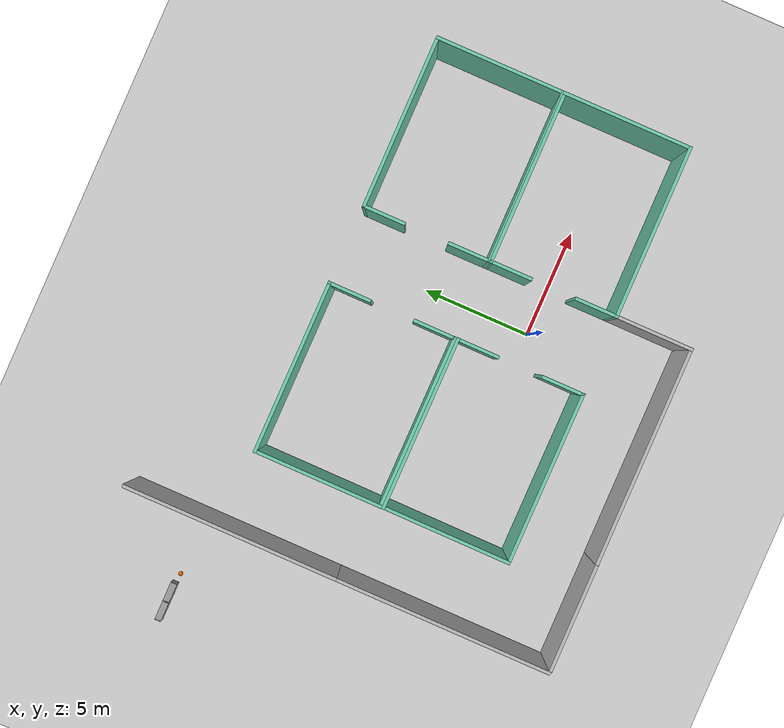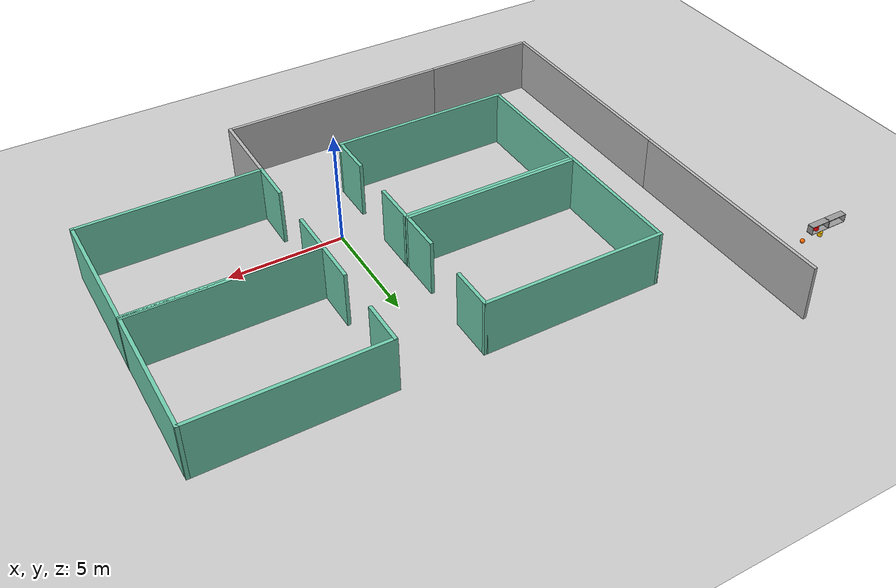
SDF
<sdf version="1.7">
 <world name="hospital_world">
  <model name="ground_plane">
   <static>1</static>
   <link name="link">
    <collision name="collision">
     <geometry><plane><normal>0 0 1</normal><size>100 100</size></plane></geometry>
     <surface>
      <contact><collide_bitmask>65535</collide_bitmask></contact>
      <friction><ode><mu>100</mu><mu2>50</mu2></ode></friction>
     </surface>
    </collision>
    <visual name="visual">
     <cast_shadows>0</cast_shadows>
     <geometry><plane><normal>0 0 1</normal><size>100 100</size></plane></geometry>
     <material>
      <script><uri>file://media/materials/scripts/gazebo.material</uri><name>Gazebo/Grey</name></script>
     </material>
    </visual>
   </link>
  </model>
  <model name="model.sdf">
   <pose>6.00187 0.00802 0 0 -0 0</pose>
   <link name="Wall_0">
    <collision name="Wall_0_Collision">
     <geometry><box><size>8 0.15 2.5</size></box></geometry>
     <pose>0 0 1.25 0 -0 0</pose>
    </collision>
    <visual name="Wall_0_Visual">
     <pose>0 0 1.25 0 -0 0</pose>
     <geometry><box><size>8 0.15 2.5</size></box></geometry>
     <material>
      <script><uri>file://media/materials/scripts/gazebo.material</uri><name>Gazebo/Grey</name></script>
      <ambient>0.435294 0.796078 0.67451 1</ambient>
     </material>
     <meta><layer>0</layer></meta>
    </visual>
    <pose>-0 -2.925 0 0 -0 0</pose>
   </link>
   <link name="Wall_2">
    <collision name="Wall_2_Collision">
     <geometry><box><size>6 0.15 2.5</size></box></geometry>
     <pose>0 0 1.25 0 -0 0</pose>
    </collision>
    <visual name="Wall_2_Visual">
     <pose>0 0 1.25 0 -0 0</pose>
     <geometry><box><size>6 0.15 2.5</size></box></geometry>
     <material>
      <script><uri>file://media/materials/scripts/gazebo.material</uri><name>Gazebo/Grey</name></script>
      <ambient>0.435294 0.796078 0.67451 1</ambient>
     </material>
     <meta><layer>0</layer></meta>
    </visual>
    <pose>3.925 0 0 0 -0 1.5708</pose>
   </link>
   <link name="Wall_5">
    <collision name="Wall_5_Collision">
     <geometry><box><size>8 0.15 2.5</size></box></geometry>
     <pose>0 0 1.25 0 -0 0</pose>
    </collision>
    <visual name="Wall_5_Visual">
     <pose>0 0 1.25 0 -0 0</pose>
     <geometry><box><size>8 0.15 2.5</size></box></geometry>
     <material>
      <script><uri>file://media/materials/scripts/gazebo.material</uri><name>Gazebo/Grey</name></script>
      <ambient>0.435294 0.796078 0.67451 1</ambient>
     </material>
     <meta><layer>0</layer></meta>
    </visual>
    <pose>-0 2.925 0 0 -0 3.14159</pose>
   </link>
   <link name="Wall_6">
    <collision name="Wall_6_Collision">
     <geometry><box><size>2 0.15 2.5</size></box></geometry>
     <pose>0 0 1.25 0 -0 0</pose>
    </collision>
    <visual name="Wall_6_Visual">
     <pose>0 0 1.25 0 -0 0</pose>
     <geometry><box><size>2 0.15 2.5</size></box></geometry>
     <material>
      <script><uri>file://media/materials/scripts/gazebo.material</uri><name>Gazebo/Grey</name></script>
      <ambient>0.435294 0.796078 0.67451 1</ambient>
     </material>
     <meta><layer>0</layer></meta>
    </visual>
    <pose>-3.925 2 0 0 -0 -1.5708</pose>
   </link>
   <link name="Wall_8">
    <collision name="Wall_8_Collision">
     <geometry><box><size>2 0.15 2.5</size></box></geometry>
     <pose>0 0 1.25 0 -0 0</pose>
    </collision>
    <visual name="Wall_8_Visual">
     <pose>0 0 1.25 0 -0 0</pose>
     <geometry><box><size>2 0.15 2.5</size></box></geometry>
     <material>
      <script><uri>file://media/materials/scripts/gazebo.material</uri><name>Gazebo/Grey</name></script>
      <ambient>0.435294 0.796078 0.67451 1</ambient>
     </material>
     <meta><layer>0</layer></meta>
    </visual>
    <pose>-3.925 -2 0 0 -0 1.5708</pose>
   </link>
   <static>1</static>
  </model>
  <model name="model.sdf_0">
   <pose>5.99464 5.93809 0 0 -0 0</pose>
   <link name="Wall_0">
    <collision name="Wall_0_Collision">
     <geometry><box><size>8 0.15 2.5</size></box></geometry>
     <pose>0 0 1.25 0 -0 0</pose>
    </collision>
    <visual name="Wall_0_Visual">
     <pose>0 0 1.25 0 -0 0</pose>
     <geometry><box><size>8 0.15 2.5</size></box></geometry>
     <material>
      <script><uri>file://media/materials/scripts/gazebo.material</uri><name>Gazebo/Grey</name></script>
      <ambient>0.435294 0.796078 0.67451 1</ambient>
     </material>
     <meta><layer>0</layer></meta>
    </visual>
    <pose>-0 -2.925 0 0 -0 0</pose>
   </link>
   <link name="Wall_2">
    <collision name="Wall_2_Collision">
     <geometry><box><size>6 0.15 2.5</size></box></geometry>
     <pose>0 0 1.25 0 -0 0</pose>
    </collision>
    <visual name="Wall_2_Visual">
     <pose>0 0 1.25 0 -0 0</pose>
     <geometry><box><size>6 0.15 2.5</size></box></geometry>
     <material>
      <script><uri>file://media/materials/scripts/gazebo.material</uri><name>Gazebo/Grey</name></script>
      <ambient>0.435294 0.796078 0.67451 1</ambient>
     </material>
     <meta><layer>0</layer></meta>
    </visual>
    <pose>3.925 0 0 0 -0 1.5708</pose>
   </link>
   <link name="Wall_5">
    <collision name="Wall_5_Collision">
     <geometry><box><size>8 0.15 2.5</size></box></geometry>
     <pose>0 0 1.25 0 -0 0</pose>
    </collision>
    <visual name="Wall_5_Visual">
     <pose>0 0 1.25 0 -0 0</pose>
     <geometry><box><size>8 0.15 2.5</size></box></geometry>
     <material>
      <script><uri>file://media/materials/scripts/gazebo.material</uri><name>Gazebo/Grey</name></script>
      <ambient>0.435294 0.796078 0.67451 1</ambient>
     </material>
     <meta><layer>0</layer></meta>
    </visual>
    <pose>-0 2.925 0 0 -0 3.14159</pose>
   </link>
   <link name="Wall_6">
    <collision name="Wall_6_Collision">
     <geometry><box><size>2 0.15 2.5</size></box></geometry>
     <pose>0 0 1.25 0 -0 0</pose>
    </collision>
    <visual name="Wall_6_Visual">
     <pose>0 0 1.25 0 -0 0</pose>
     <geometry><box><size>2 0.15 2.5</size></box></geometry>
     <material>
      <script><uri>file://media/materials/scripts/gazebo.material</uri><name>Gazebo/Grey</name></script>
      <ambient>0.435294 0.796078 0.67451 1</ambient>
     </material>
     <meta><layer>0</layer></meta>
    </visual>
    <pose>-3.925 2 0 0 -0 -1.5708</pose>
   </link>
   <link name="Wall_8">
    <collision name="Wall_8_Collision">
     <geometry><box><size>2 0.15 2.5</size></box></geometry>
     <pose>0 0 1.25 0 -0 0</pose>
    </collision>
    <visual name="Wall_8_Visual">
     <pose>0 0 1.25 0 -0 0</pose>
     <geometry><box><size>2 0.15 2.5</size></box></geometry>
     <material>
      <script><uri>file://media/materials/scripts/gazebo.material</uri><name>Gazebo/Grey</name></script>
      <ambient>0.435294 0.796078 0.67451 1</ambient>
     </material>
     <meta><layer>0</layer></meta>
    </visual>
    <pose>-3.925 -2 0 0 -0 1.5708</pose>
   </link>
   <static>1</static>
  </model>
  <model name="wall_3_5">
   <static>1</static>
   <link name="link">
    <pose>0 0 1.25 0 -0 0</pose>
    <collision name="collision">
     <geometry><box><size>3.5 0.15 2.5</size></box></geometry>
     <surface>
      <contact>
       <collide_without_contact>1</collide_without_contact>
       <collide_without_contact_bitmask>2</collide_without_contact_bitmask>
      </contact>
     </surface>
    </collision>
    <visual name="visual">
     <cast_shadows>0</cast_shadows>
     <geometry><box><size>3.5 0.15 2.5</size></box></geometry>
     <material>
      <script>
       <uri>model://cutout_wall/materials/scripts</uri>
       <uri>model://cutout_wall/materials/textures</uri>
       <name>drc_practice/cutout_wall</name>
      </script>
     </material>
    </visual>
    <sensor name="mud_contact" type="contact">
     <always_on>1</always_on>
     <update_rate>1000</update_rate>
     <contact><collision>collision</collision><topic>__default_topic__</topic></contact>
    </sensor>
   </link>
   <plugin name="gazebo_mud" filename="libMudPlugin.so">
    <contact_sensor_name>link/mud_contact</contact_sensor_name>
    <stiffness>0.0</stiffness>
    <damping>40.0</damping>
    <contact_surface_bitmask>2</contact_surface_bitmask>
    <link_name>drill::link</link_name>
   </plugin>
   <pose>2.07112 -4.73808 -0 0 -0 1.56806</pose>
  </model>
  <model name="model.sdf_2">
   <pose>-5.47704 -0.011767 0 0 -0 3.13762</pose>
   <link name="Wall_0">
    <collision name="Wall_0_Collision">
     <geometry><box><size>8 0.15 2.5</size></box></geometry>
     <pose>0 0 1.25 0 -0 0</pose>
    </collision>
    <visual name="Wall_0_Visual">
     <pose>0 0 1.25 0 -0 0</pose>
     <geometry><box><size>8 0.15 2.5</size></box></geometry>
     <material>
      <script><uri>file://media/materials/scripts/gazebo.material</uri><name>Gazebo/Grey</name></script>
      <ambient>0.435294 0.796078 0.67451 1</ambient>
     </material>
     <meta><layer>0</layer></meta>
    </visual>
    <pose>-0 -2.925 0 0 -0 0</pose>
   </link>
   <link name="Wall_2">
    <collision name="Wall_2_Collision">
     <geometry><box><size>6 0.15 2.5</size></box></geometry>
     <pose>0 0 1.25 0 -0 0</pose>
    </collision>
    <visual name="Wall_2_Visual">
     <pose>0 0 1.25 0 -0 0</pose>
     <geometry><box><size>6 0.15 2.5</size></box></geometry>
     <material>
      <script><uri>file://media/materials/scripts/gazebo.material</uri><name>Gazebo/Grey</name></script>
      <ambient>0.435294 0.796078 0.67451 1</ambient>
     </material>
     <meta><layer>0</layer></meta>
    </visual>
    <pose>3.925 0 0 0 -0 1.5708</pose>
   </link>
   <link name="Wall_5">
    <collision name="Wall_5_Collision">
     <geometry><box><size>8 0.15 2.5</size></box></geometry>
     <pose>0 0 1.25 0 -0 0</pose>
    </collision>
    <visual name="Wall_5_Visual">
     <pose>0 0 1.25 0 -0 0</pose>
     <geometry><box><size>8 0.15 2.5</size></box></geometry>
     <material>
      <script><uri>file://media/materials/scripts/gazebo.material</uri><name>Gazebo/Grey</name></script>
      <ambient>0.435294 0.796078 0.67451 1</ambient>
     </material>
     <meta><layer>0</layer></meta>
    </visual>
    <pose>-0 2.925 0 0 -0 3.14159</pose>
   </link>
   <link name="Wall_6">
    <collision name="Wall_6_Collision">
     <geometry><box><size>2 0.15 2.5</size></box></geometry>
     <pose>0 0 1.25 0 -0 0</pose>
    </collision>
    <visual name="Wall_6_Visual">
     <pose>0 0 1.25 0 -0 0</pose>
     <geometry><box><size>2 0.15 2.5</size></box></geometry>
     <material>
      <script><uri>file://media/materials/scripts/gazebo.material</uri><name>Gazebo/Grey</name></script>
      <ambient>0.435294 0.796078 0.67451 1</ambient>
     </material>
     <meta><layer>0</layer></meta>
    </visual>
    <pose>-3.925 2 0 0 -0 -1.5708</pose>
   </link>
   <link name="Wall_8">
    <collision name="Wall_8_Collision">
     <geometry><box><size>2 0.15 2.5</size></box></geometry>
     <pose>0 0 1.25 0 -0 0</pose>
    </collision>
    <visual name="Wall_8_Visual">
     <pose>0 0 1.25 0 -0 0</pose>
     <geometry><box><size>2 0.15 2.5</size></box></geometry>
     <material>
      <script><uri>file://media/materials/scripts/gazebo.material</uri><name>Gazebo/Grey</name></script>
      <ambient>0.435294 0.796078 0.67451 1</ambient>
     </material>
     <meta><layer>0</layer></meta>
    </visual>
    <pose>-3.925 -2 0 0 -0 1.5708</pose>
   </link>
   <static>1</static>
  </model>
  <model name="model.sdf_2_clone">
   <pose>-5.47026 5.98319 -0 0 -0 3.13762</pose>
   <link name="Wall_0">
    <collision name="Wall_0_Collision">
     <geometry><box><size>8 0.15 2.5</size></box></geometry>
     <pose>0 0 1.25 0 -0 0</pose>
    </collision>
    <visual name="Wall_0_Visual">
     <pose>0 0 1.25 0 -0 0</pose>
     <geometry><box><size>8 0.15 2.5</size></box></geometry>
     <material>
      <script><uri>file://media/materials/scripts/gazebo.material</uri><name>Gazebo/Grey</name></script>
      <ambient>0.435294 0.796078 0.67451 1</ambient>
     </material>
     <meta><layer>0</layer></meta>
    </visual>
    <pose>-0 -2.925 0 0 -0 0</pose>
   </link>
   <link name="Wall_2">
    <collision name="Wall_2_Collision">
     <geometry><box><size>6 0.15 2.5</size></box></geometry>
     <pose>0 0 1.25 0 -0 0</pose>
    </collision>
    <visual name="Wall_2_Visual">
     <pose>0 0 1.25 0 -0 0</pose>
     <geometry><box><size>6 0.15 2.5</size></box></geometry>
     <material>
      <script><uri>file://media/materials/scripts/gazebo.material</uri><name>Gazebo/Grey</name></script>
      <ambient>0.435294 0.796078 0.67451 1</ambient>
     </material>
     <meta><layer>0</layer></meta>
    </visual>
    <pose>3.925 0 0 0 -0 1.5708</pose>
   </link>
   <link name="Wall_5">
    <collision name="Wall_5_Collision">
     <geometry><box><size>8 0.15 2.5</size></box></geometry>
     <pose>0 0 1.25 0 -0 0</pose>
    </collision>
    <visual name="Wall_5_Visual">
     <pose>0 0 1.25 0 -0 0</pose>
     <geometry><box><size>8 0.15 2.5</size></box></geometry>
     <material>
      <script><uri>file://media/materials/scripts/gazebo.material</uri><name>Gazebo/Grey</name></script>
      <ambient>0.435294 0.796078 0.67451 1</ambient>
     </material>
     <meta><layer>0</layer></meta>
    </visual>
    <pose>-0 2.925 0 0 -0 3.14159</pose>
   </link>
   <link name="Wall_6">
    <collision name="Wall_6_Collision">
     <geometry><box><size>2 0.15 2.5</size></box></geometry>
     <pose>0 0 1.25 0 -0 0</pose>
    </collision>
    <visual name="Wall_6_Visual">
     <pose>0 0 1.25 0 -0 0</pose>
     <geometry><box><size>2 0.15 2.5</size></box></geometry>
     <material>
      <script><uri>file://media/materials/scripts/gazebo.material</uri><name>Gazebo/Grey</name></script>
      <ambient>0.435294 0.796078 0.67451 1</ambient>
     </material>
     <meta><layer>0</layer></meta>
    </visual>
    <pose>-3.925 2 0 0 -0 -1.5708</pose>
   </link>
   <link name="Wall_8">
    <collision name="Wall_8_Collision">
     <geometry><box><size>2 0.15 2.5</size></box></geometry>
     <pose>0 0 1.25 0 -0 0</pose>
    </collision>
    <visual name="Wall_8_Visual">
     <pose>0 0 1.25 0 -0 0</pose>
     <geometry><box><size>2 0.15 2.5</size></box></geometry>
     <material>
      <script><uri>file://media/materials/scripts/gazebo.material</uri><name>Gazebo/Grey</name></script>
      <ambient>0.435294 0.796078 0.67451 1</ambient>
     </material>
     <meta><layer>0</layer></meta>
    </visual>
    <pose>-3.925 -2 0 0 -0 1.5708</pose>
   </link>
   <static>1</static>
  </model>
  <model name="wall_10">
   <static>1</static>
   <link name="link">
    <pose>0 0 1.25 0 -0 0</pose>
    <collision name="collision">
     <geometry><box><size>10 0.15 2.5</size></box></geometry>
     <surface>
      <contact>
       <collide_without_contact>1</collide_without_contact>
       <collide_without_contact_bitmask>2</collide_without_contact_bitmask>
      </contact>
     </surface>
    </collision>
    <visual name="visual">
     <cast_shadows>0</cast_shadows>
     <geometry><box><size>10 0.15 2.5</size></box></geometry>
     <material>
      <script>
       <uri>model://cutout_wall/materials/scripts</uri>
       <uri>model://cutout_wall/materials/textures</uri>
       <name>drc_practice/cutout_wall</name>
      </script>
     </material>
    </visual>
    <sensor name="mud_contact" type="contact">
     <always_on>1</always_on>
     <update_rate>1000</update_rate>
     <contact><collision>collision</collision><topic>__default_topic__</topic></contact>
    </sensor>
   </link>
   <plugin name="gazebo_mud" filename="libMudPlugin.so">
    <contact_sensor_name>link/mud_contact</contact_sensor_name>
    <stiffness>0.0</stiffness>
    <damping>40.0</damping>
    <contact_surface_bitmask>2</contact_surface_bitmask>
    <link_name>drill::link</link_name>
   </plugin>
   <pose>-3.00199 -6.40567 0 0 -0 0</pose>
  </model>
  <model name="wall_10_0">
   <static>1</static>
   <link name="link">
    <pose>0 0 1.25 0 -0 0</pose>
    <collision name="collision">
     <geometry><box><size>10 0.15 2.5</size></box></geometry>
     <surface>
      <contact>
       <collide_without_contact>1</collide_without_contact>
       <collide_without_contact_bitmask>2</collide_without_contact_bitmask>
      </contact>
     </surface>
    </collision>
    <visual name="visual">
     <cast_shadows>0</cast_shadows>
     <geometry><box><size>10 0.15 2.5</size></box></geometry>
     <material>
      <script>
       <uri>model://cutout_wall/materials/scripts</uri>
       <uri>model://cutout_wall/materials/textures</uri>
       <name>drc_practice/cutout_wall</name>
      </script>
     </material>
    </visual>
    <sensor name="mud_contact" type="contact">
     <always_on>1</always_on>
     <update_rate>1000</update_rate>
     <contact><collision>collision</collision><topic>__default_topic__</topic></contact>
    </sensor>
   </link>
   <plugin name="gazebo_mud" filename="libMudPlugin.so">
    <contact_sensor_name>link/mud_contact</contact_sensor_name>
    <stiffness>0.0</stiffness>
    <damping>40.0</damping>
    <contact_surface_bitmask>2</contact_surface_bitmask>
    <link_name>drill::link</link_name>
   </plugin>
   <pose>-13.0332 -1.45494 0 0 0 -1.57214</pose>
  </model>
  <model name="wall_5">
   <static>1</static>
   <link name="link">
    <pose>0 0 1.25 0 -0 0</pose>
    <collision name="collision">
     <geometry><box><size>5 0.15 2.5</size></box></geometry>
     <surface>
      <contact>
       <collide_without_contact>1</collide_without_contact>
       <collide_without_contact_bitmask>2</collide_without_contact_bitmask>
      </contact>
     </surface>
    </collision>
    <visual name="visual">
     <cast_shadows>0</cast_shadows>
     <geometry><box><size>5 0.15 2.5</size></box></geometry>
     <material>
      <script>
       <uri>model://cutout_wall/materials/scripts</uri>
       <uri>model://cutout_wall/materials/textures</uri>
       <name>drc_practice/cutout_wall</name>
      </script>
     </material>
    </visual>
    <sensor name="mud_contact" type="contact">
     <always_on>1</always_on>
     <update_rate>1000</update_rate>
     <contact><collision>collision</collision><topic>__default_topic__</topic></contact>
    </sensor>
   </link>
   <plugin name="gazebo_mud" filename="libMudPlugin.so">
    <contact_sensor_name>link/mud_contact</contact_sensor_name>
    <stiffness>0.0</stiffness>
    <damping>40.0</damping>
    <contact_surface_bitmask>2</contact_surface_bitmask>
    <link_name>drill::link</link_name>
   </plugin>
   <pose>-10.4583 -6.41458 0 0 -0 0</pose>
  </model>
  <model name="wall_10_0_clone">
   <static>1</static>
   <link name="link">
    <pose>0 0 1.25 0 -0 0</pose>
    <collision name="collision">
     <geometry><box><size>10 0.15 2.5</size></box></geometry>
     <surface>
      <contact>
       <collide_without_contact>1</collide_without_contact>
       <collide_without_contact_bitmask>2</collide_without_contact_bitmask>
      </contact>
     </surface>
    </collision>
    <visual name="visual">
     <cast_shadows>0</cast_shadows>
     <geometry><box><size>10 0.15 2.5</size></box></geometry>
     <material>
      <script>
       <uri>model://cutout_wall/materials/scripts</uri>
       <uri>model://cutout_wall/materials/textures</uri>
       <name>drc_practice/cutout_wall</name>
      </script>
     </material>
    </visual>
    <sensor name="mud_contact" type="contact">
     <always_on>1</always_on>
     <update_rate>1000</update_rate>
     <contact><collision>collision</collision><topic>__default_topic__</topic></contact>
    </sensor>
   </link>
   <plugin name="gazebo_mud" filename="libMudPlugin.so">
    <contact_sensor_name>link/mud_contact</contact_sensor_name>
    <stiffness>0.0</stiffness>
    <damping>40.0</damping>
    <contact_surface_bitmask>2</contact_surface_bitmask>
    <link_name>drill::link</link_name>
   </plugin>
   <pose>-13.02 8.53758 0 0 0 -1.57214</pose>
  </model>
  <model name="Wall_Cabinet_36x15W_clone_0">
   <link name="Wall_0">
    <pose>0 0 0.01 0 -0 0</pose>
    <inertial>
     <mass>1.9796</mass>
     <inertia><ixx>0.0145</ixx><iyy>0.1511</iyy><izz>0.1367</izz><ixy>0</ixy><ixz>0</ixz><iyz>0</iyz></inertia>
    </inertial>
    <collision name="Wall_0_Collision"><geometry><box><size>0.91 0.296 0.02</size></box></geometry></collision>
    <visual name="Wall_0_Visual">
     <geometry><box><size>0.91 0.296 0.02</size></box></geometry>
     <material>
      <script><uri>file://media/materials/scripts/gazebo.material</uri><name>Gazebo/Grey</name></script>
      <ambient>1 1 1 1</ambient>
     </material>
    </visual>
   </link>
   <joint name="0_2" type="fixed">
    <pose>-0.455 0 0 0 -0 0</pose>
    <parent>Wall_2</parent>
    <child>Wall_0</child>
    <axis><xyz>0 0 1</xyz><limit><lower>-1e+16</lower><upper>1e+16</upper></limit></axis>
   </joint>
   <joint name="0_4" type="fixed">
    <pose>0.455 0 0 0 -0 0</pose>
    <parent>Wall_4</parent>
    <child>Wall_0</child>
    <axis><xyz>0 0 1</xyz><limit><lower>-1e+16</lower><upper>1e+16</upper></limit></axis>
   </joint>
   <joint name="0_8" type="fixed">
    <pose>0 -0.148 0 0 -0 0</pose>
    <parent>Wall_8</parent>
    <child>Wall_0</child>
    <axis><xyz>0 0 1</xyz><limit><lower>-1e+16</lower><upper>1e+16</upper></limit></axis>
   </joint>
   <link name="Wall_2">
    <pose>-0.445 0 0.192 0 -0 0</pose>
    <inertial>
     <mass>0.8353</mass>
     <inertia><ixx>0.0061</ixx><iyy>0.0164</iyy><izz>0.0103</izz><ixy>0</ixy><ixz>0</ixz><iyz>0</iyz></inertia>
    </inertial>
    <collision name="Wall_2_Collision"><geometry><box><size>0.02 0.296 0.384</size></box></geometry></collision>
    <visual name="Wall_2_Visual">
     <geometry><box><size>0.02 0.296 0.384</size></box></geometry>
     <material>
      <script><uri>file://media/materials/scripts/gazebo.material</uri><name>Gazebo/Grey</name></script>
      <ambient>1 1 1 1</ambient>
     </material>
    </visual>
   </link>
   <link name="Wall_4">
    <pose>0.445 0 0.192 0 -0 0</pose>
    <inertial>
     <mass>0.8353</mass>
     <inertia><ixx>0.0061</ixx><iyy>0.0164</iyy><izz>0.0103</izz><ixy>0</ixy><ixz>0</ixz><iyz>0</iyz></inertia>
    </inertial>
    <collision name="Wall_4_Collision"><geometry><box><size>0.02 0.296 0.384</size></box></geometry></collision>
    <visual name="Wall_4_Visual">
     <geometry><box><size>0.02 0.296 0.384</size></box></geometry>
     <material>
      <script><uri>file://media/materials/scripts/gazebo.material</uri><name>Gazebo/Grey</name></script>
      <ambient>1 1 1 1</ambient>
     </material>
    </visual>
   </link>
   <link name="Wall_6">
    <pose>0 0 0.374 0 -0 0</pose>
    <inertial>
     <mass>1.9796</mass>
     <inertia><ixx>0.0145</ixx><iyy>0.1511</iyy><izz>0.1367</izz><ixy>0</ixy><ixz>0</ixz><iyz>0</iyz></inertia>
    </inertial>
    <collision name="Wall_6_Collision"><geometry><box><size>0.91 0.296 0.02</size></box></geometry></collision>
    <visual name="Wall_6_Visual">
     <geometry><box><size>0.91 0.296 0.02</size></box></geometry>
     <material>
      <script><uri>file://media/materials/scripts/gazebo.material</uri><name>Gazebo/Grey</name></script>
      <ambient>1 1 1 1</ambient>
     </material>
    </visual>
   </link>
   <joint name="6_2" type="fixed">
    <pose>-0.455 0 0 0 -0 0</pose>
    <parent>Wall_2</parent>
    <child>Wall_6</child>
    <axis><xyz>0 0 1</xyz><limit><lower>-1e+16</lower><upper>1e+16</upper></limit></axis>
   </joint>
   <joint name="6_4" type="fixed">
    <pose>0.455 0 0 0 -0 0</pose>
    <parent>Wall_4</parent>
    <child>Wall_6</child>
    <axis><xyz>0 0 1</xyz><limit><lower>-1e+16</lower><upper>1e+16</upper></limit></axis>
   </joint>
   <joint name="6_8" type="fixed">
    <pose>0 -0.148 0 0 -0 0</pose>
    <parent>Wall_8</parent>
    <child>Wall_6</child>
    <axis><xyz>0 0 1</xyz><limit><lower>-1e+16</lower><upper>1e+16</upper></limit></axis>
   </joint>
   <link name="Wall_8">
    <pose>0 -0.138 0.19 0 -0 0</pose>
    <inertial>
     <mass>2.5302</mass>
     <inertia><ixx>0.0305</ixx><iyy>0.1732</iyy><izz>0.2035</izz><ixy>0</ixy><ixz>0</ixz><iyz>0</iyz></inertia>
    </inertial>
    <collision name="Wall_8_Collision"><geometry><box><size>0.906 0.02 0.38</size></box></geometry></collision>
    <visual name="Wall_8_Visual">
     <geometry><box><size>0.906 0.02 0.38</size></box></geometry>
     <material>
      <script><uri>file://media/materials/scripts/gazebo.material</uri><name>Gazebo/Grey</name></script>
      <ambient>1 1 1 1</ambient>
     </material>
    </visual>
   </link>
   <joint name="8_2" type="fixed">
    <pose>-0.453 0 0 0 -0 0</pose>
    <parent>Wall_2</parent>
    <child>Wall_8</child>
    <axis><xyz>0 1 0</xyz><limit><lower>-1e+16</lower><upper>1e+16</upper></limit></axis>
   </joint>
   <joint name="8_4" type="fixed">
    <pose>0.453 0 0 0 -0 0</pose>
    <parent>Wall_4</parent>
    <child>Wall_8</child>
    <axis><xyz>0 1 0</xyz><limit><lower>-1e+16</lower><upper>1e+16</upper></limit></axis>
   </joint>
   <static>1</static>
   <pose>-17.8759 10.0659 0.383805 0 -0 0</pose>
  </model>
  <model name="Wall_Cabinet_36x15W_clone_0_clone">
   <link name="Wall_0">
    <pose>0 0 0.01 0 -0 0</pose>
    <inertial>
     <mass>1.9796</mass>
     <inertia><ixx>0.0145</ixx><iyy>0.1511</iyy><izz>0.1367</izz><ixy>0</ixy><ixz>0</ixz><iyz>0</iyz></inertia>
    </inertial>
    <collision name="Wall_0_Collision"><geometry><box><size>0.91 0.296 0.02</size></box></geometry></collision>
    <visual name="Wall_0_Visual">
     <geometry><box><size>0.91 0.296 0.02</size></box></geometry>
     <material>
      <script><uri>file://media/materials/scripts/gazebo.material</uri><name>Gazebo/Grey</name></script>
      <ambient>1 1 1 1</ambient>
     </material>
    </visual>
   </link>
   <joint name="0_2" type="fixed">
    <pose>-0.455 0 0 0 -0 0</pose>
    <parent>Wall_2</parent>
    <child>Wall_0</child>
    <axis><xyz>0 0 1</xyz><limit><lower>-1e+16</lower><upper>1e+16</upper></limit></axis>
   </joint>
   <joint name="0_4" type="fixed">
    <pose>0.455 0 0 0 -0 0</pose>
    <parent>Wall_4</parent>
    <child>Wall_0</child>
    <axis><xyz>0 0 1</xyz><limit><lower>-1e+16</lower><upper>1e+16</upper></limit></axis>
   </joint>
   <joint name="0_8" type="fixed">
    <pose>0 -0.148 0 0 -0 0</pose>
    <parent>Wall_8</parent>
    <child>Wall_0</child>
    <axis><xyz>0 0 1</xyz><limit><lower>-1e+16</lower><upper>1e+16</upper></limit></axis>
   </joint>
   <link name="Wall_2">
    <pose>-0.445 0 0.192 0 -0 0</pose>
    <inertial>
     <mass>0.8353</mass>
     <inertia><ixx>0.0061</ixx><iyy>0.0164</iyy><izz>0.0103</izz><ixy>0</ixy><ixz>0</ixz><iyz>0</iyz></inertia>
    </inertial>
    <collision name="Wall_2_Collision"><geometry><box><size>0.02 0.296 0.384</size></box></geometry></collision>
    <visual name="Wall_2_Visual">
     <geometry><box><size>0.02 0.296 0.384</size></box></geometry>
     <material>
      <script><uri>file://media/materials/scripts/gazebo.material</uri><name>Gazebo/Grey</name></script>
      <ambient>1 1 1 1</ambient>
     </material>
    </visual>
   </link>
   <link name="Wall_4">
    <pose>0.445 0 0.192 0 -0 0</pose>
    <inertial>
     <mass>0.8353</mass>
     <inertia><ixx>0.0061</ixx><iyy>0.0164</iyy><izz>0.0103</izz><ixy>0</ixy><ixz>0</ixz><iyz>0</iyz></inertia>
    </inertial>
    <collision name="Wall_4_Collision"><geometry><box><size>0.02 0.296 0.384</size></box></geometry></collision>
    <visual name="Wall_4_Visual">
     <geometry><box><size>0.02 0.296 0.384</size></box></geometry>
     <material>
      <script><uri>file://media/materials/scripts/gazebo.material</uri><name>Gazebo/Grey</name></script>
      <ambient>1 1 1 1</ambient>
     </material>
    </visual>
   </link>
   <link name="Wall_6">
    <pose>0 0 0.374 0 -0 0</pose>
    <inertial>
     <mass>1.9796</mass>
     <inertia><ixx>0.0145</ixx><iyy>0.1511</iyy><izz>0.1367</izz><ixy>0</ixy><ixz>0</ixz><iyz>0</iyz></inertia>
    </inertial>
    <collision name="Wall_6_Collision"><geometry><box><size>0.91 0.296 0.02</size></box></geometry></collision>
    <visual name="Wall_6_Visual">
     <geometry><box><size>0.91 0.296 0.02</size></box></geometry>
     <material>
      <script><uri>file://media/materials/scripts/gazebo.material</uri><name>Gazebo/Grey</name></script>
      <ambient>1 1 1 1</ambient>
     </material>
    </visual>
   </link>
   <joint name="6_2" type="fixed">
    <pose>-0.455 0 0 0 -0 0</pose>
    <parent>Wall_2</parent>
    <child>Wall_6</child>
    <axis><xyz>0 0 1</xyz><limit><lower>-1e+16</lower><upper>1e+16</upper></limit></axis>
   </joint>
   <joint name="6_4" type="fixed">
    <pose>0.455 0 0 0 -0 0</pose>
    <parent>Wall_4</parent>
    <child>Wall_6</child>
    <axis><xyz>0 0 1</xyz><limit><lower>-1e+16</lower><upper>1e+16</upper></limit></axis>
   </joint>
   <joint name="6_8" type="fixed">
    <pose>0 -0.148 0 0 -0 0</pose>
    <parent>Wall_8</parent>
    <child>Wall_6</child>
    <axis><xyz>0 0 1</xyz><limit><lower>-1e+16</lower><upper>1e+16</upper></limit></axis>
   </joint>
   <link name="Wall_8">
    <pose>0 -0.138 0.19 0 -0 0</pose>
    <inertial>
     <mass>2.5302</mass>
     <inertia><ixx>0.0305</ixx><iyy>0.1732</iyy><izz>0.2035</izz><ixy>0</ixy><ixz>0</ixz><iyz>0</iyz></inertia>
    </inertial>
    <collision name="Wall_8_Collision"><geometry><box><size>0.906 0.02 0.38</size></box></geometry></collision>
    <visual name="Wall_8_Visual">
     <geometry><box><size>0.906 0.02 0.38</size></box></geometry>
     <material>
      <script><uri>file://media/materials/scripts/gazebo.material</uri><name>Gazebo/Grey</name></script>
      <ambient>1 1 1 1</ambient>
     </material>
    </visual>
   </link>
   <joint name="8_2" type="fixed">
    <pose>-0.453 0 0 0 -0 0</pose>
    <parent>Wall_2</parent>
    <child>Wall_8</child>
    <axis><xyz>0 1 0</xyz><limit><lower>-1e+16</lower><upper>1e+16</upper></limit></axis>
   </joint>
   <joint name="8_4" type="fixed">
    <pose>0.453 0 0 0 -0 0</pose>
    <parent>Wall_4</parent>
    <child>Wall_8</child>
    <axis><xyz>0 1 0</xyz><limit><lower>-1e+16</lower><upper>1e+16</upper></limit></axis>
   </joint>
   <static>1</static>
   <pose>-16.9591 10.0652 0.383805 0 -0 0</pose>
  </model>
  <model name="sphere_or">
   <link name="link_1">
    <pose>0 0 0.1 0 -0 0</pose>
    <inertial>
     <mass>1</mass>
     <inertia><ixx>0.1</ixx><ixy>0</ixy><ixz>0</ixz><iyy>0.1</iyy><iyz>0</iyz><izz>0.1</izz></inertia>
    </inertial>
    <visual name="visual">
     <geometry><sphere><radius>0.1</radius></sphere></geometry>
     <material>
      <lighting>1</lighting>
      <script><uri>file://media/materials/scripts/gazebo.material</uri><name>Gazebo/Grey</name></script>
      <ambient>1 0.416 0 1</ambient>
      <diffuse>1 0.416 0 1</diffuse>
      <specular>0 0 0 1</specular>
      <emissive>0 0 0 1</emissive>
      <shader type="vertex"><normal_map>__default__</normal_map></shader>
     </material>
    </visual>
    <collision name="collision">
     <geometry><sphere><radius>0.1</radius></sphere></geometry>
     <surface>
      <friction>
       <ode><mu>1</mu><mu2>1</mu2><fdir1>0 0 0</fdir1><slip1>0</slip1><slip2>0</slip2></ode>
       <torsional>
        <coefficient>1</coefficient>
        <patch_radius>0</patch_radius>
        <surface_radius>0</surface_radius>
        <use_patch_radius>1</use_patch_radius>
        <ode><slip>0</slip></ode>
       </torsional>
      </friction>
      <bounce><restitution_coefficient>0</restitution_coefficient><threshold>1e+06</threshold></bounce>
      <contact>
       <collide_without_contact>0</collide_without_contact>
       <collide_without_contact_bitmask>1</collide_without_contact_bitmask>
       <collide_bitmask>1</collide_bitmask>
       <ode>
        <soft_cfm>0</soft_cfm>
        <soft_erp>0.2</soft_erp>
        <kp>1e+13</kp>
        <kd>1</kd>
        <max_vel>0.01</max_vel>
        <min_depth>0</min_depth>
       </ode>
       <bullet>
        <split_impulse>1</split_impulse>
        <split_impulse_penetration_threshold>-0.01</split_impulse_penetration_threshold>
        <soft_cfm>0</soft_cfm>
        <soft_erp>0.2</soft_erp>
        <kp>1e+13</kp>
        <kd>1</kd>
       </bullet>
      </contact>
     </surface>
    </collision>
   </link>
   <static>1</static>
   <pose>-16.2133 10.0441 0 0 -0 0</pose>
  </model>
  <model name="cylinder_yo">
   <link name="link_0">
    <pose>0 0 0.1 0 -0 0</pose>
    <inertial>
     <mass>1</mass>
     <inertia><ixx>0.145833</ixx><ixy>0</ixy><ixz>0</ixz><iyy>0.145833</iyy><iyz>0</iyz><izz>0.125</izz></inertia>
    </inertial>
    <visual name="visual">
     <geometry><cylinder><radius>0.1</radius><length>0.2</length></cylinder></geometry>
     <material>
      <lighting>1</lighting>
      <script><uri>file://media/materials/scripts/gazebo.material</uri><name>Gazebo/Grey</name></script>
      <ambient>1 0.749 0 1</ambient>
      <diffuse>1 0.749 0 1</diffuse>
      <specular>0 0 0 1</specular>
      <emissive>0 0 0 1</emissive>
      <shader type="vertex"><normal_map>__default__</normal_map></shader>
     </material>
    </visual>
    <collision name="collision">
     <geometry><cylinder><radius>0.1</radius><length>0.2</length></cylinder></geometry>
     <surface>
      <friction>
       <ode><mu>1</mu><mu2>1</mu2><fdir1>0 0 0</fdir1><slip1>0</slip1><slip2>0</slip2></ode>
       <torsional>
        <coefficient>1</coefficient>
        <patch_radius>0</patch_radius>
        <surface_radius>0</surface_radius>
        <use_patch_radius>1</use_patch_radius>
        <ode><slip>0</slip></ode>
       </torsional>
      </friction>
      <bounce><restitution_coefficient>0</restitution_coefficient><threshold>1e+06</threshold></bounce>
      <contact>
       <collide_without_contact>0</collide_without_contact>
       <collide_without_contact_bitmask>1</collide_without_contact_bitmask>
       <collide_bitmask>1</collide_bitmask>
       <ode>
        <soft_cfm>0</soft_cfm>
        <soft_erp>0.2</soft_erp>
        <kp>1e+13</kp>
        <kd>1</kd>
        <max_vel>0.01</max_vel>
        <min_depth>0</min_depth>
       </ode>
       <bullet>
        <split_impulse>1</split_impulse>
        <split_impulse_penetration_threshold>-0.01</split_impulse_penetration_threshold>
        <soft_cfm>0</soft_cfm>
        <soft_erp>0.2</soft_erp>
        <kp>1e+13</kp>
        <kd>1</kd>
       </bullet>
      </contact>
     </surface>
    </collision>
   </link>
   <static>1</static>
   <pose>-17.1827 10.0564 0 0 -0 0</pose>
  </model>
  <model name="cylinder_r">
   <link name="link_0">
    <pose>0 0 0.1 0 -0 0</pose>
    <inertial>
     <mass>1</mass>
     <inertia><ixx>0.145833</ixx><ixy>0</ixy><ixz>0</ixz><iyy>0.145833</iyy><iyz>0</iyz><izz>0.125</izz></inertia>
    </inertial>
    <visual name="visual">
     <geometry><cylinder><radius>0.1</radius><length>0.2</length></cylinder></geometry>
     <material>
      <lighting>1</lighting>
      <script><uri>file://media/materials/scripts/gazebo.material</uri><name>Gazebo/Grey</name></script>
      <ambient>1 0 0 1</ambient>
      <diffuse>1 0 0 1</diffuse>
      <specular>0 0 0 1</specular>
      <emissive>0 0 0 1</emissive>
      <shader type="vertex"><normal_map>__default__</normal_map></shader>
     </material>
    </visual>
    <collision name="collision">
     <geometry><cylinder><radius>0.1</radius><length>0.2</length></cylinder></geometry>
     <surface>
      <friction>
       <ode><mu>1</mu><mu2>1</mu2><fdir1>0 0 0</fdir1><slip1>0</slip1><slip2>0</slip2></ode>
       <torsional>
        <coefficient>1</coefficient>
        <patch_radius>0</patch_radius>
        <surface_radius>0</surface_radius>
        <use_patch_radius>1</use_patch_radius>
        <ode><slip>0</slip></ode>
       </torsional>
      </friction>
      <bounce><restitution_coefficient>0</restitution_coefficient><threshold>1e+06</threshold></bounce>
      <contact>
       <collide_without_contact>0</collide_without_contact>
       <collide_without_contact_bitmask>1</collide_without_contact_bitmask>
       <collide_bitmask>1</collide_bitmask>
       <ode>
        <soft_cfm>0</soft_cfm>
        <soft_erp>0.2</soft_erp>
        <kp>1e+13</kp>
        <kd>1</kd>
        <max_vel>0.01</max_vel>
        <min_depth>0</min_depth>
       </ode>
       <bullet>
        <split_impulse>1</split_impulse>
        <split_impulse_penetration_threshold>-0.01</split_impulse_penetration_threshold>
        <soft_cfm>0</soft_cfm>
        <soft_erp>0.2</soft_erp>
        <kp>1e+13</kp>
        <kd>1</kd>
       </bullet>
      </contact>
     </surface>
    </collision>
   </link>
   <static>1</static>
   <pose>-16.899 10.0347 0.40522 0 -0 0</pose>
  </model>
 </world>
</sdf>
